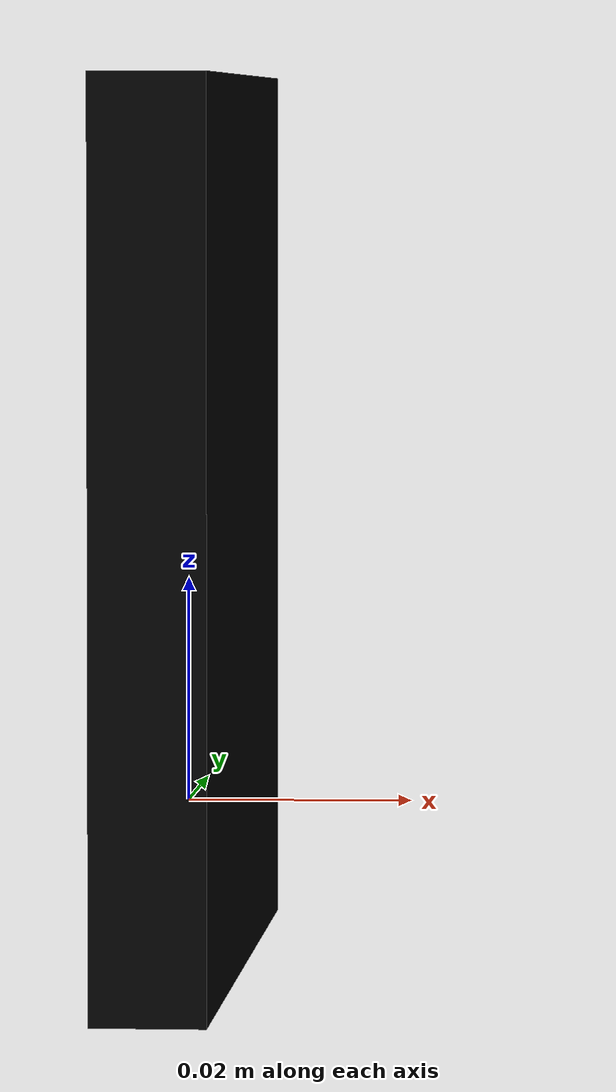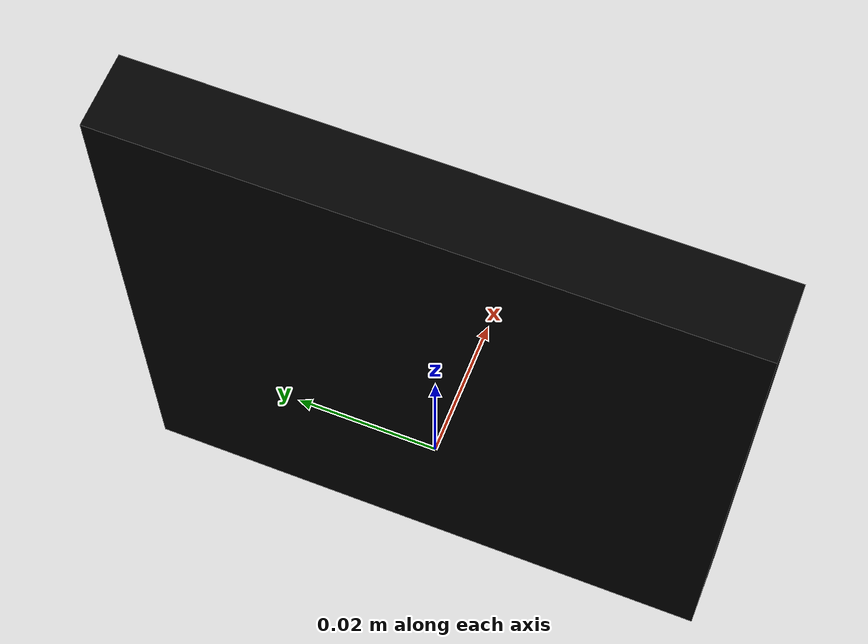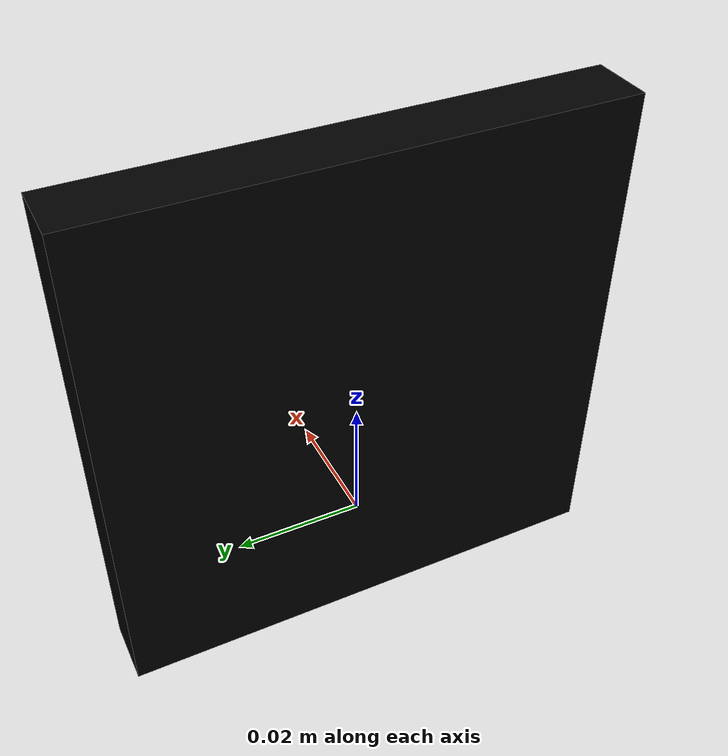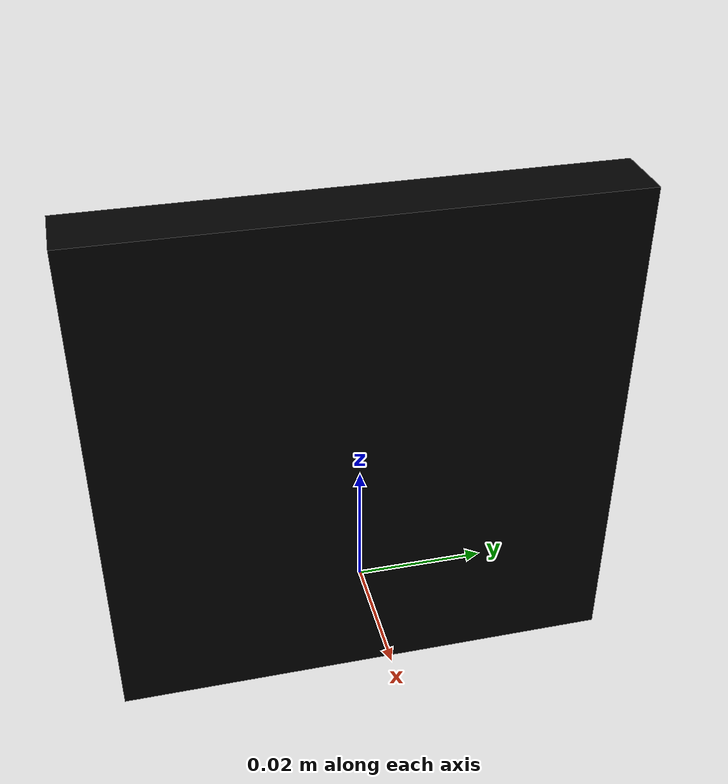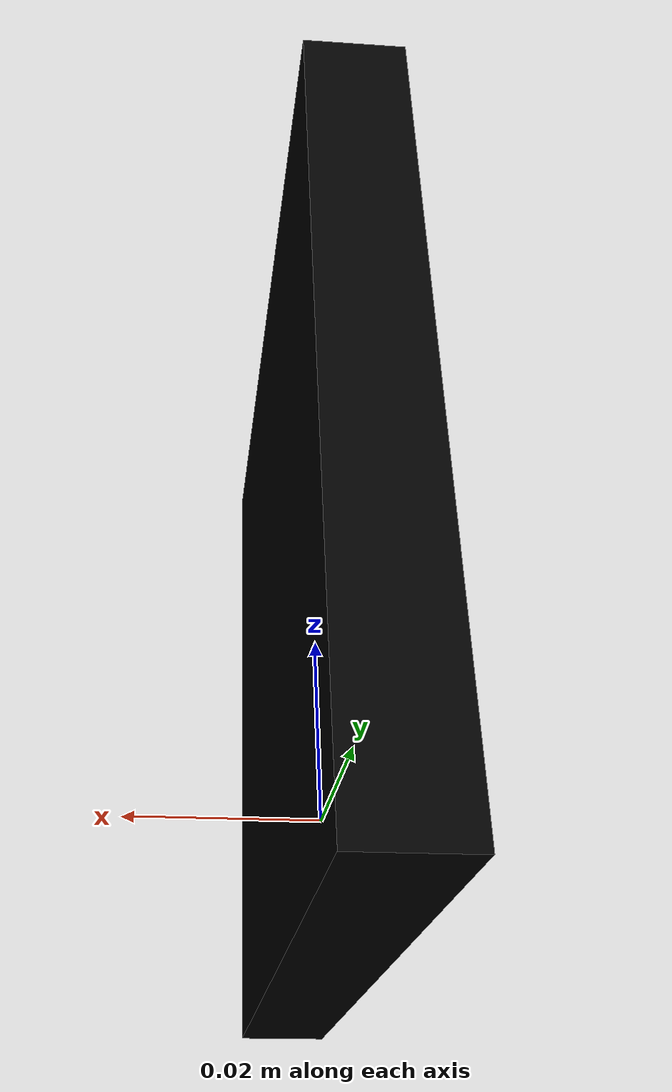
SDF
<?xml version="1.0" ?>
<sdf version="1.5">
  <model name="fire_mockup">
    <static>true</static>

    <link name="fire_mockup">
      <pose>0 0 0.025 0 0 0</pose>
      <visual name="visual">
        <geometry>
          <box>
            <size>0.01 0.08 0.08</size>
          </box>
        </geometry>
        <material>
          <ambient>0 0 0 1</ambient>
          <emissive>1 0.033 0 1</emissive>
          <diffuse>0 0 0 1</diffuse>
        </material>
      </visual>
    </link>

  </model>
</sdf>
